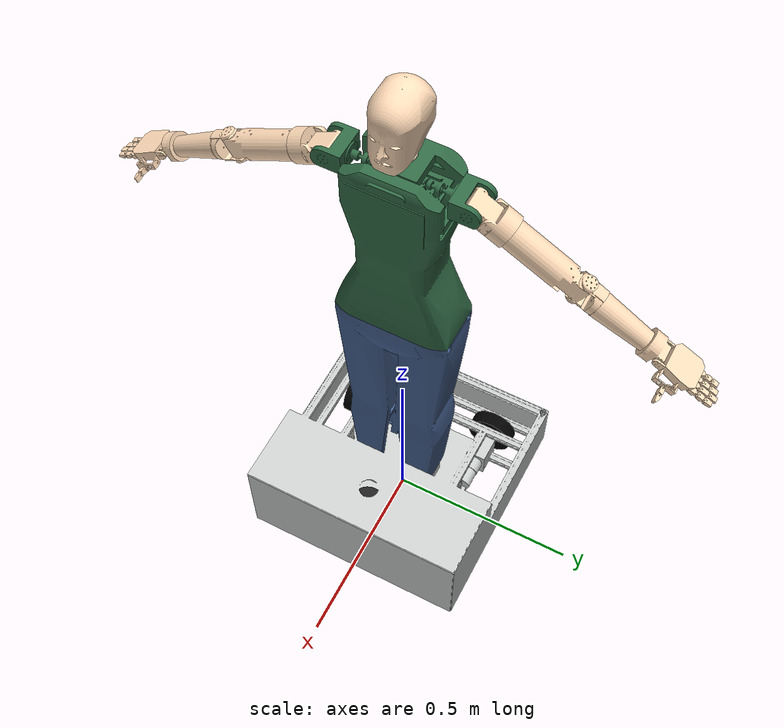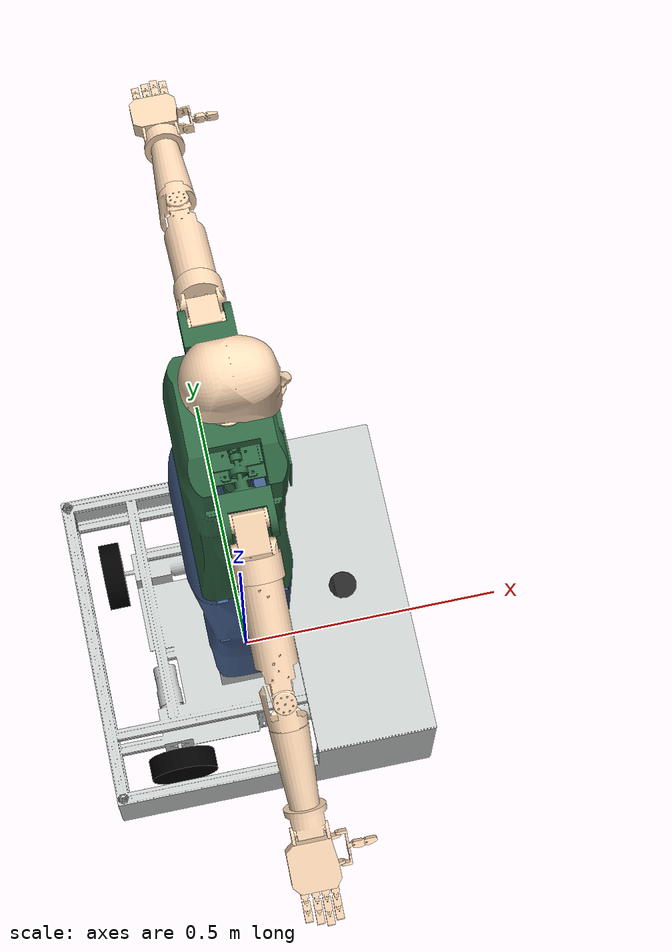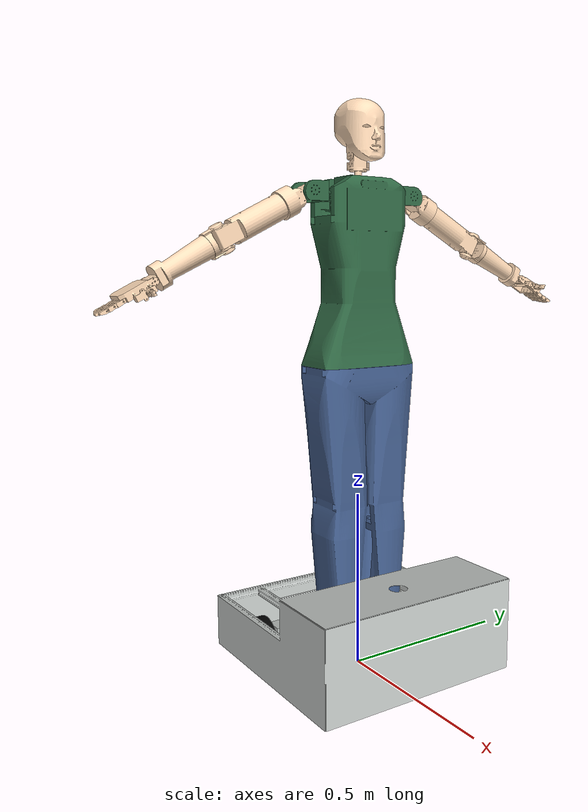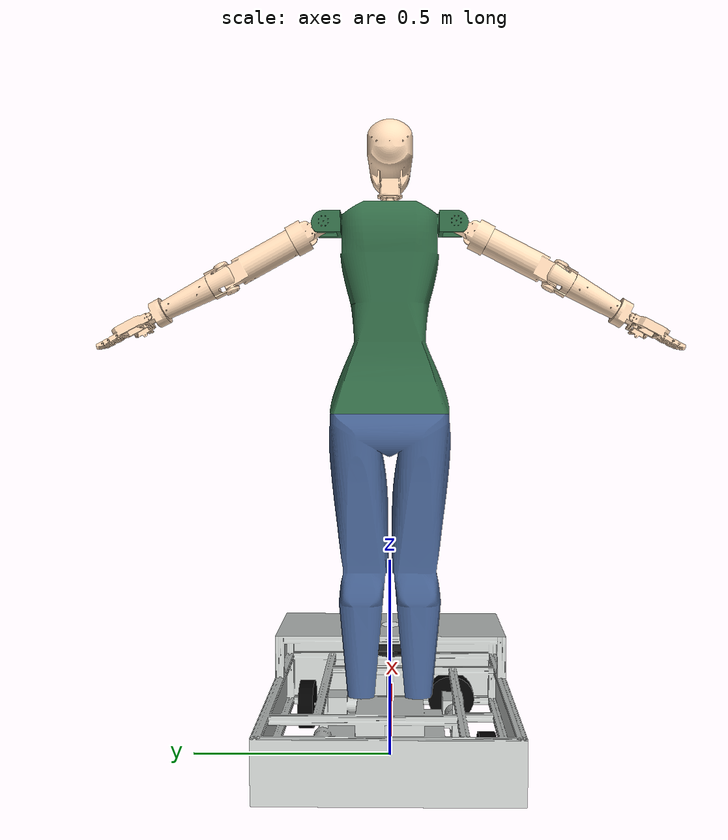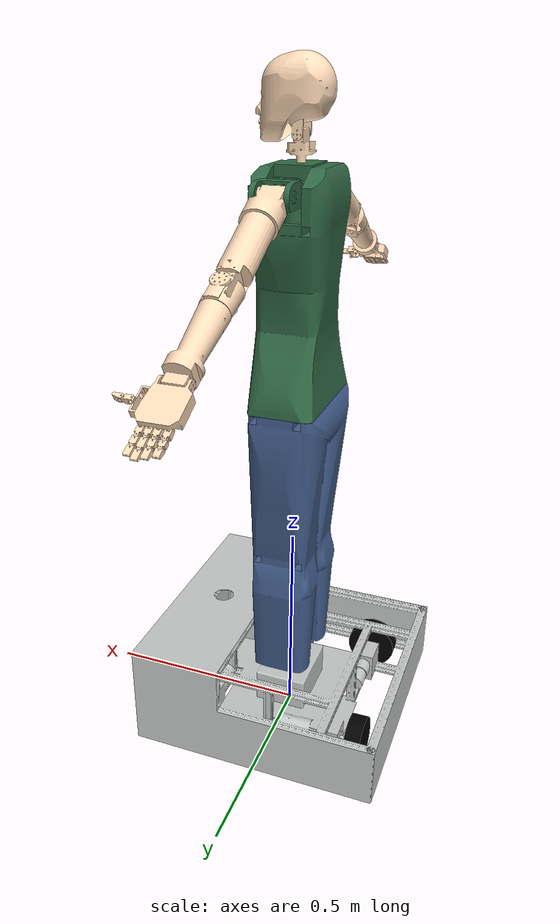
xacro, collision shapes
<?xml version="1.0"?>
<robot xmlns:xacro="http://www.ros.org/wiki/xacro"  name="robot">

    <xacro:arg name="use_eva" default="true"/>
    <xacro:arg name="use_drive" default="true"/>
    <xacro:arg name="use_omni_wheel" default="false"/>

    <xacro:include filename="robot_core.xacro"/>
    <xacro:include filename="gazebo_control.xacro"/>
    <xacro:include filename="ros2_control.xacro"/>

</robot>

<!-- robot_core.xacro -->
<robot xmlns:xacro="http://www.ros.org/wiki/xacro" >

    <xacro:include filename="inertial_macros.xacro"/>

    <!-- Base Link -->

    <link name="base_footprint"/>
    <link name="base_link"></link>
    <joint name="base_footprint_joint" type="fixed">
        <child link="base_link"/>
        <parent link="base_footprint"/>
        <origin xyz="0 0 0" rpy="0 0 0"/>
    </joint>

    <!-- USE DRIVE -->

    <xacro:if value="$(arg use_drive)">

        <link name="drive_base_link">
            <visual>
                <origin xyz="0.0 0.0 0.0" rpy="0.0 0.0 0.0"/>
                <geometry>
                    <mesh filename="file://$(find project_eva)/meshes/Drive/Base_Chassis.STL"/>
                </geometry>
                <material name="aluminium">
                    <color rgba="0.7725490196078432 0.788235294117647 0.7803921568627451 1.0" />
                </material>
            </visual>

            <collision>
                <origin xyz="0.0 0.0 0.0" rpy="0.0 0.0 0.0"/>
                <geometry>
                    <mesh filename="file://$(find project_eva)/meshes/Drive/Base_Chassis.STL"/>
                </geometry>
            </collision>

            <xacro:inertial_box mass="10.0" x="0.600" y="0.600" z="0.120" xyz="0 0 0" rpy="0 0 0">
            </xacro:inertial_box>
        </link>

        <gazebo reference = "drive_base_link">
            <material>Gazebo/Grey</material>
        </gazebo>

        <joint name="drive_base_joint" type="fixed">
            <parent link="base_link"/>
            <child link="drive_base_link"/>
            <origin xyz="0 0 0.02" rpy="0 0 0" />
        </joint>

        <xacro:include filename="lidar.xacro"/>

        <!-- Wheels-->

        <xacro:if value="$(arg use_omni_wheel)">
            <!-- Omni Wheels -->
            <xacro:include filename="omni_wheel.xacro"/>
            <xacro:omni_wheel parent="drive_base_link" child="front_left"  xyz=" 0.255  0.205 0.035" rpy=" 0.0   1.57 0.0 "/>
            <xacro:omni_wheel parent="drive_base_link" child="back_right"  xyz="-0.255 -0.205 0.035" rpy=" 0.0  -1.57 0.0"/>
            <xacro:omni_wheel parent="drive_base_link" child="back_left"   xyz="-0.205  0.255 0.035" rpy="-1.57  0    0.0"/>
            <xacro:omni_wheel parent="drive_base_link" child="front_right" xyz=" 0.205 -0.255 0.035" rpy=" 1.57  0    0.0"/>
        </xacro:if>

        <xacro:unless value="$(arg use_omni_wheel)">
            <!--Normal Wheels-->
            <xacro:include filename="wheel.xacro"/>
            <xacro:wheel parent="drive_base_link" child="front_left"  xyz=" 0.168  0.218   0.045" rpy=" 1.57  0.0  0.0 "/>
            <xacro:wheel parent="drive_base_link" child="back_right"  xyz="-0.168 -0.218   0.045" rpy="-1.57  0.0  0.0"/>
            <xacro:wheel parent="drive_base_link" child="back_left"   xyz=" 0.218  -0.168 0.045" rpy=" 0.0  -1.57 0.0"/>
            <xacro:wheel parent="drive_base_link" child="front_right" xyz="-0.218   0.168 0.045" rpy=" 0.0   1.57 0.0"/>
        </xacro:unless>

        <xacro:default_wheel_transmission name="front_left"/>
        <xacro:default_wheel_transmission name="back_right"/>
        <xacro:default_wheel_transmission name="back_left"/>
        <xacro:default_wheel_transmission name="front_right"/>

    </xacro:if>

    <!-- USE EVA -->

    <xacro:if value="$(arg use_eva)">

        <xacro:include filename="body.xacro"/>
        <xacro:include filename="realsense.xacro"/>
        <xacro:include filename="arm.xacro"/>

        <link name="EVA_base_link"></link>

        <joint name="base_joint" type="fixed">
            <parent link="base_link"/>
            <child link="EVA_base_link"/>
            <origin xyz="0 0 0.175" rpy="0 0 0" />
        </joint>

        <xacro:sholder parent="body" side="left"  v_rpy="0.0 0.0 0"    c_xyz="0.0  0.035 0.0" o_xyz="0    0.118 0.457" o_rpy="0.0  0.0  0.0"/>
        <xacro:sholder parent="body" side="right" v_rpy="0.0 0.0 3.14" c_xyz="0.0 -0.035 0.0" o_xyz="0.0 -0.118 0.457" o_rpy="3.14 3.14 3.14"/>

        <xacro:upper_biceps side="left"  lower="0.08"     upper="2.09" o_xyz="0  0.040 0"/>
        <xacro:upper_biceps side="right" lower="-2.09" upper="-0.08"    o_xyz="0 -0.040 0"/>

        <xacro:lower_biceps side="left"  lower="-1.57" upper="0"/>
        <xacro:lower_biceps side="right" lower="0"     upper="1.57"/>

        <xacro:elbow side="left"  lower="-2.05" upper="0"/>
        <xacro:elbow side="right" lower="-2.05" upper="0"/>

        <xacro:wrist side="left"  lower="-1.57" upper="1.57"/>
        <xacro:wrist side="right" lower="-1.57" upper="1.57"/>

        <xacro:hand side="left"  lower="-1.10" upper="1.5"  xyz="0.0475 0.012 0.01"/>
        <xacro:hand side="right" lower="-1.5"  upper="1.10" xyz="0.0475 0.0185 0.01"/>

        <xacro:finger_link side="right" finger="4" link="1" xyz=" 0.008  0.0065 0.003"  rpy="3.14 1.57 0" ixyz="0.002 0 -0.009" mesh="all_finger_1"/>
        <xacro:finger_link side="right" finger="3" link="1" xyz=" 0.008  0.0065 0.003"  rpy="3.14 1.57 0" ixyz="0.002 0 -0.009" mesh="all_finger_1"/>
        <xacro:finger_link side="right" finger="2" link="1" xyz=" 0.008  0.0065 0.003"  rpy="3.14 1.57 0" ixyz="0.002 0 -0.009" mesh="all_finger_1"/>
        <xacro:finger_link side="right" finger="1" link="1" xyz=" 0.008  0.0065 0.003"  rpy="3.14 1.57 0" ixyz="0.002 0 -0.009" mesh="all_finger_1"/>
        <xacro:finger_link side="left"  finger="4" link="1" xyz="-0.004 -0.0065 0.003"  rpy="0    1.57 0" ixyz="0.002 0 -0.009" mesh="all_finger_1"/>
        <xacro:finger_link side="left"  finger="3" link="1" xyz="-0.004 -0.0065 0.003"  rpy="0    1.57 0" ixyz="0.002 0 -0.009" mesh="all_finger_1"/>
        <xacro:finger_link side="left"  finger="2" link="1" xyz="-0.004 -0.0065 0.003"  rpy="0    1.57 0" ixyz="0.002 0 -0.009" mesh="all_finger_1"/>
        <xacro:finger_link side="left"  finger="1" link="1" xyz="-0.004 -0.0065 0.003"  rpy="0    1.57 0" ixyz="0.002 0 -0.009" mesh="all_finger_1"/>

        <xacro:finger_link side="right" finger="4" link="2" xyz=" 0.008  0.006 0.003"   rpy="3.14 1.57 0" ixyz="0.002 0 -0.009" mesh="index_finger_2"/>
        <xacro:finger_link side="right" finger="3" link="2" xyz=" 0.008  0.006 0.003"   rpy="3.14 1.57 0" ixyz="0.002 0 -0.009" mesh="middle_finger_2"/>
        <xacro:finger_link side="right" finger="2" link="2" xyz=" 0.008  0.006 0.003"   rpy="3.14 1.57 0" ixyz="0.002 0 -0.009" mesh="ring_finger_2"/>
        <xacro:finger_link side="right" finger="1" link="2" xyz=" 0.008  0.0055 0.003"  rpy="3.14 1.57 0" ixyz="0.002 0 -0.009" mesh="pinky_finger_2"/>
        <xacro:finger_link side="left"  finger="4" link="2" xyz="-0.004 -0.006 0.003"   rpy="0    1.57 0" ixyz="0.002 0 -0.009" mesh="index_finger_2"/>
        <xacro:finger_link side="left"  finger="3" link="2" xyz="-0.004 -0.006 0.003"   rpy="0    1.57 0" ixyz="0.002 0 -0.009" mesh="middle_finger_2"/>
        <xacro:finger_link side="left"  finger="2" link="2" xyz="-0.004 -0.006 0.003"   rpy="0    1.57 0" ixyz="0.002 0 -0.009" mesh="ring_finger_2"/>
        <xacro:finger_link side="left"  finger="1" link="2" xyz="-0.004 -0.0055 0.003"  rpy="0    1.57 0" ixyz="0.002 0 -0.009" mesh="pinky_finger_2"/>

        <xacro:finger_link side="right" finger="4" link="3" xyz=" 0.008  0.0052 0.0035" rpy="3.14 1.57 0" ixyz="0.002 0 -0.009" mesh="index_finger_3"/>
        <xacro:finger_link side="right" finger="3" link="3" xyz=" 0.008  0.0052 0.0035" rpy="3.14 1.57 0" ixyz="0.002 0 -0.009" mesh="middle_finger_3"/>
        <xacro:finger_link side="right" finger="2" link="3" xyz=" 0.008  0.0052 0.0035" rpy="3.14 1.57 0" ixyz="0.002 0 -0.009" mesh="ring_finger_3"/>
        <xacro:finger_link side="right" finger="1" link="3" xyz=" 0.008  0.0052 0.0035" rpy="3.14 1.57 0" ixyz="0.002 0 -0.009" mesh="pinky_finger_3"/>
        <xacro:finger_link side="left"  finger="4" link="3" xyz="-0.004 -0.0052 0.0035" rpy="0    1.57 0" ixyz="0.002 0 -0.009" mesh="index_finger_3"/>
        <xacro:finger_link side="left"  finger="3" link="3" xyz="-0.004 -0.0052 0.0035" rpy="0    1.57 0" ixyz="0.002 0 -0.009" mesh="middle_finger_3"/>
        <xacro:finger_link side="left"  finger="2" link="3" xyz="-0.004 -0.0052 0.0035" rpy="0    1.57 0" ixyz="0.002 0 -0.009" mesh="ring_finger_3"/>
        <xacro:finger_link side="left"  finger="1" link="3" xyz="-0.004 -0.0052 0.0035" rpy="0    1.57 0" ixyz="0.002 0 -0.009" mesh="pinky_finger_3"/>

        <xacro:finger_link side="right" finger="5" link="1" xyz=" 0.023  0.015  0.008"  rpy="3.14 1.57 0" ixyz="0.000 0 -0.015" mesh="thumb_finger_1" />
        <xacro:finger_link side="right" finger="5" link="2" xyz="-0.003  0.006 -0.006"  rpy="1.57 0    0" ixyz="0.009 0  0.000" mesh="thumb_finger_2" />
        <xacro:finger_link side="right" finger="5" link="3" xyz="-0.0035 0.006 -0.005"  rpy="1.57 0    0" ixyz="0.009 0  0.000" mesh="thumb_finger_3" />
        <xacro:finger_link side="left"  finger="5" link="1" xyz=" 0.023  0.015  0.008"  rpy="3.14 1.57 0" ixyz="0.000 0 -0.015" mesh="thumb_finger_1" />
        <xacro:finger_link side="left"  finger="5" link="2" xyz="-0.003  0.006 -0.006"  rpy="1.57 0    0" ixyz="0.009 0  0.000" mesh="thumb_finger_2" />
        <xacro:finger_link side="left"  finger="5" link="3" xyz="-0.0035 0.006 -0.005"  rpy="1.57 0    0" ixyz="0.009 0  0.000" mesh="thumb_finger_3" />

        <xacro:finger_joints_1 name="right_finger_4_link_1" parent="right_hand"            child="right_finger_4_link_1"  xyz=" 0.02126 0.005 -0.088" lower="0"     upper="1.57" />
        <xacro:finger_joints   name="right_finger_4_link_2" parent="right_finger_4_link_1" child="right_finger_4_link_2"  xyz=" 0       0     -0.024" lower="0"     upper="1.57"  mimic="right_finger_4_link_1_joint"/>
        <xacro:finger_joints   name="right_finger_4_link_3" parent="right_finger_4_link_2" child="right_finger_4_link_3"  xyz=" 0       0     -0.019" lower="0"     upper="1.57"  mimic="right_finger_4_link_1_joint"/>
        <xacro:finger_joints_1 name="right_finger_3_link_1" parent="right_hand"            child="right_finger_3_link_1"  xyz=" 0.00625 0.005 -0.088" lower="0"     upper="1.57" />
        <xacro:finger_joints   name="right_finger_3_link_2" parent="right_finger_3_link_1" child="right_finger_3_link_2"  xyz=" 0       0     -0.024" lower="0"     upper="1.57"  mimic="right_finger_3_link_1_joint"/>
        <xacro:finger_joints   name="right_finger_3_link_3" parent="right_finger_3_link_2" child="right_finger_3_link_3"  xyz=" 0       0     -0.024" lower="0"     upper="1.57"  mimic="right_finger_3_link_1_joint"/>
        <xacro:finger_joints_1 name="right_finger_2_link_1" parent="right_hand"            child="right_finger_2_link_1"  xyz="-0.00875 0.005 -0.088" lower="0"     upper="1.57" />
        <xacro:finger_joints   name="right_finger_2_link_2" parent="right_finger_2_link_1" child="right_finger_2_link_2"  xyz=" 0       0     -0.024" lower="0"     upper="1.57"  mimic="right_finger_2_link_1_joint"/>
        <xacro:finger_joints   name="right_finger_2_link_3" parent="right_finger_2_link_2" child="right_finger_2_link_3"  xyz=" 0       0     -0.019" lower="0"     upper="1.57"  mimic="right_finger_2_link_1_joint"/>
        <xacro:finger_joints_1 name="right_finger_1_link_1" parent="right_hand"            child="right_finger_1_link_1"  xyz="-0.02575 0.005 -0.088" lower="0"     upper="1.57" />
        <xacro:finger_joints   name="right_finger_1_link_2" parent="right_finger_1_link_1" child="right_finger_1_link_2"  xyz=" 0       0     -0.024" lower="0"     upper="1.57"  mimic="right_finger_1_link_1_joint"/>
        <xacro:finger_joints   name="right_finger_1_link_3" parent="right_finger_1_link_2" child="right_finger_1_link_3"  xyz=" 0       0     -0.016" lower="0"     upper="1.57"  mimic="right_finger_1_link_1_joint"/>

        <xacro:finger_joints_1 name="left_finger_4_link_1"  parent="left_hand"             child="left_finger_4_link_1"  xyz=" 0.02126 -0.005 -0.088" lower="-1.57" upper="0" />
        <xacro:finger_joints   name="left_finger_4_link_2"  parent="left_finger_4_link_1"  child="left_finger_4_link_2"  xyz=" 0        0     -0.024" lower="-1.57" upper="0"     mimic="left_finger_4_link_1_joint"/>
        <xacro:finger_joints   name="left_finger_4_link_3"  parent="left_finger_4_link_2"  child="left_finger_4_link_3"  xyz=" 0        0     -0.019" lower="-1.57" upper="0"     mimic="left_finger_4_link_1_joint"/>
        <xacro:finger_joints_1 name="left_finger_3_link_1"  parent="left_hand"             child="left_finger_3_link_1"  xyz=" 0.00625 -0.005 -0.088" lower="-1.57" upper="0" />
        <xacro:finger_joints   name="left_finger_3_link_2"  parent="left_finger_3_link_1"  child="left_finger_3_link_2"  xyz=" 0        0     -0.024" lower="-1.57" upper="0"     mimic="left_finger_3_link_1_joint"/>
        <xacro:finger_joints   name="left_finger_3_link_3"  parent="left_finger_3_link_2"  child="left_finger_3_link_3"  xyz=" 0        0     -0.024" lower="-1.57" upper="0"     mimic="left_finger_3_link_1_joint"/>
        <xacro:finger_joints_1 name="left_finger_2_link_1"  parent="left_hand"             child="left_finger_2_link_1"  xyz="-0.00875 -0.005 -0.088" lower="-1.57" upper="0" />
        <xacro:finger_joints   name="left_finger_2_link_2"  parent="left_finger_2_link_1"  child="left_finger_2_link_2"  xyz=" 0        0     -0.024" lower="-1.57" upper="0"     mimic="left_finger_2_link_1_joint"/>
        <xacro:finger_joints   name="left_finger_2_link_3"  parent="left_finger_2_link_2"  child="left_finger_2_link_3"  xyz=" 0        0     -0.019" lower="-1.57" upper="0"     mimic="left_finger_2_link_1_joint"/>
        <xacro:finger_joints_1 name="left_finger_1_link_1"  parent="left_hand"             child="left_finger_1_link_1"  xyz="-0.02575 -0.005 -0.088" lower="-1.57" upper="0" />
        <xacro:finger_joints   name="left_finger_1_link_2"  parent="left_finger_1_link_1"  child="left_finger_1_link_2"  xyz=" 0        0     -0.024" lower="-1.57" upper="0"     mimic="left_finger_1_link_1_joint"/>
        <xacro:finger_joints   name="left_finger_1_link_3"  parent="left_finger_1_link_2"  child="left_finger_1_link_3"  xyz=" 0        0     -0.016" lower="-1.57" upper="0"     mimic="left_finger_1_link_1_joint"/>

        <xacro:default_transmission name="left_arm"/>
        <xacro:default_transmission name="left_sholder"/>
        <xacro:default_transmission name="left_biceps"/>
        <xacro:default_transmission name="left_elbow"/>
        <xacro:default_transmission name="left_wrist"/>
        <xacro:default_transmission name="left_hand"/>

        <xacro:default_transmission name="right_arm"/>
        <xacro:default_transmission name="right_sholder"/>
        <xacro:default_transmission name="right_biceps"/>
        <xacro:default_transmission name="right_elbow"/>
        <xacro:default_transmission name="right_wrist"/>
        <xacro:default_transmission name="right_hand"/>

        <xacro:default_transmission name="right_finger_4_link_1"/>
        <xacro:default_transmission name="right_finger_3_link_1"/>
        <xacro:default_transmission name="right_finger_2_link_1"/>
        <xacro:default_transmission name="right_finger_1_link_1"/>

        <xacro:default_transmission name="left_finger_4_link_1"/>
        <xacro:default_transmission name="left_finger_3_link_1"/>
        <xacro:default_transmission name="left_finger_2_link_1"/>
        <xacro:default_transmission name="left_finger_1_link_1"/>

        <xacro:default_transmission name="right_finger_5_link_1"/>
        <xacro:default_transmission name="right_finger_5_link_2"/>
        <xacro:default_transmission name="left_finger_5_link_1"/>
        <xacro:default_transmission name="left_finger_5_link_2"/>

    </xacro:if>

</robot>

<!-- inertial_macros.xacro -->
<robot xmlns:xacro="http://www.ros.org/wiki/xacro" >

    <!-- Specify some standard inertial calculations https://en.wikipedia.org/wiki/List_of_moments_of_inertia -->
    <!-- These make use of xacro's mathematical functionality -->

    <xacro:macro name="inertial_sphere" params="mass radius rpy xyz">
        <inertial>
            <origin xyz="${xyz}" rpy="${rpy}"/>
            <mass value="${mass}" />
            <inertia ixx="${(2/5) * mass * (radius*radius)}" ixy="0.0" ixz="0.0"
                    iyy="${(2/5) * mass * (radius*radius)}" iyz="0.0"
                    izz="${(2/5) * mass * (radius*radius)}" />
        </inertial>
    </xacro:macro>

    <xacro:macro name="inertial_box" params="mass x y z rpy xyz">
        <inertial>
            <origin xyz="${xyz}" rpy="${rpy}"/>
            <mass value="${mass}" />
            <inertia ixx="${(1/12) * mass * (y*y+z*z)}" ixy="0.0" ixz="0.0"
                    iyy="${(1/12) * mass * (x*x+z*z)}" iyz="0.0"
                    izz="${(1/12) * mass * (x*x+y*y)}" />
        </inertial>
    </xacro:macro>

    <xacro:macro name="inertial_cylinder" params="mass length radius xyz rpy">
        <inertial>
            <origin xyz="${xyz}" rpy="${rpy}"/>
            <mass value="${mass}" />
            <inertia ixx="${(1/12) * mass * (3*radius*radius + length*length)}" ixy="0.0" ixz="0.0"
                    iyy="${(1/12) * mass * (3*radius*radius + length*length)}" iyz="0.0"
                    izz="${(1/2) * mass * (radius*radius)}" />
        </inertial>
    </xacro:macro>

</robot>

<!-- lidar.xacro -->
<robot xmlns:xacro="http://www.ros.org/wiki/xacro">

    <xacro:property name="lidar_mass"       value="0.010"/>
    <xacro:property name="lidar_radius"     value="0.0425"/>
    <xacro:property name="lidar_height"     value="0.024"/>

    <joint name="laser_joint" type="fixed">
        <parent link="drive_base_link"/>
        <child link="laser_frame"/>
        <origin xyz="0.2 0.0 0.193" rpy="0.0 0.0 0.0"/>
    </joint>

    <link name="laser_frame">

        <visual>
            <origin xyz="-0.02 0.055 0.0" rpy="1.57 0 -1.57 "/>
            <geometry>
                <mesh filename="file://$(find project_eva)/meshes/Sensors/Rplidar_S1.STL" scale="0.001 0.001 0.001"/>
            </geometry>
            <material name="">
                <color rgba="0.0 0.0 0.0 0.8"/>
            </material>
        </visual>
        <collision>
            <geometry>
                <cylinder radius="${lidar_radius}" length="${lidar_height}" />
            </geometry>
        </collision>

        <xacro:inertial_cylinder mass="${lidar_mass}" length="${lidar_height}" radius="${lidar_radius}" xyz="0 0 0" rpy="0 0 0">
        </xacro:inertial_cylinder>

    </link>

    <gazebo reference="laser_frame">
        <material>Gazebo/Black</material>
        <sensor name="laser" type="ray">
            <pose> 0 0 0 0 0 0 </pose>
            <visualize>false</visualize>
            <update_rate>10</update_rate>
            <ray>
                <scan>
                    <horizontal>
                        <samples>2475</samples>
                        <min_angle>-3.14</min_angle>
                        <max_angle>3.14</max_angle>
                    </horizontal>
                </scan>
                <range>
                    <min>0.3</min>
                    <max>8</max>
                </range>
            </ray>
            <plugin name="laser_controller" filename="libgazebo_ros_ray_sensor.so">
                <ros>
                    <argument>~/out:=scan</argument>
                </ros>
                <output_type>sensor_msgs/LaserScan</output_type>
                <frame_name>laser_frame</frame_name>
            </plugin>
            </sensor>
    </gazebo>
</robot>

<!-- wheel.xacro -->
<robot xmlns:xacro="http://www.ros.org/wiki/xacro">

    <xacro:include filename="inertial_macros.xacro"/>

    <xacro:property name="wheel_mass" value="0.650"/>
    <xacro:property name="wheel_radius" value="0.0635"/>
    <xacro:property name="wheel_thickness" value="0.039"/>

    <xacro:macro name="wheel" params="parent child xyz rpy">

        <link name="${child}_wheel_link">

            <visual>
                <origin xyz="0.0 0.0 -0.035" rpy="3.14 0.0 0.0"/>
                <geometry>
                    <mesh filename="file://$(find project_eva)/meshes/Drive/Omni_Wheel.STL"/>
                </geometry>
                <material name="Black">
                    <color rgba="0.0 0.0 0.0 1.0"/>
                </material>
            </visual>

            <collision>
                <origin xyz="0.0 0.0 -0.01" rpy="3.14 0.0 0.0"/>
                <geometry>
                    <cylinder radius="${wheel_radius}" length="${wheel_thickness}"/>
                </geometry>
            </collision>

            <xacro:inertial_cylinder mass="${wheel_mass}" length="${wheel_thickness}" radius="${wheel_radius}" xyz="0 0 0" rpy="0 0 0">
            </xacro:inertial_cylinder>
        </link>

        <gazebo reference="${child}_wheel_link">
            <kp>10000.0</kp>
            <kd>100</kd>
            <mu1>3</mu1>
            <mu2>0.6</mu2>
            <fdir1>0 1 0</fdir1>
            <fdir2>0 1 0</fdir2>
            <maxVel>10.0</maxVel>
            <minDepth>0</minDepth>
            <material>Gazebo/FlatBlack</material>
        </gazebo>

        <joint name="${child}_wheel_joint" type="continuous">
            <parent link="${parent}"/>
            <child link="${child}_wheel_link"/>
            <origin xyz="${xyz}" rpy="${rpy}" />
            <axis xyz="0.0 0.0 1.0" />
        </joint>

    </xacro:macro>

    <xacro:macro name="default_wheel_transmission" params="name">
        <transmission name="${name}_transmission">
            <plugin>transmission_interface/SimpleTransmission</plugin>
            <actuator name="${name}_motor" role="actuator1"/>
            <joint name="${name}_wheel_joint"  role="joint1">
                <mechanical_reduction>1.0</mechanical_reduction>
            </joint>
        </transmission>
    </xacro:macro>

</robot>

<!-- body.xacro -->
<robot xmlns:xacro="http://www.ros.org/wiki/xacro">

    <xacro:include filename="inertial_macros.xacro"/>

    <link name="leg">
        <visual>
            <origin xyz="0.0 0.0 0.0" rpy="1.57 0.0 1.57"/>
            <geometry>
                <mesh filename="file://$(find project_eva)/meshes/EVA/leg.STL"/>
            </geometry>
            <material name="jeans">
                <color rgba="${66/255} ${93/255} ${140/255} 1.0"/>
            </material>
        </visual>

        <collision>
            <origin xyz="0.0 0.0 0.0" rpy="1.57 0.0 1.57"/>
            <geometry>
                <mesh filename="file://$(find project_eva)/meshes/EVA/leg.STL"/>
            </geometry>
            <material name="black">
            </material>
        </collision>

        <xacro:inertial_box mass="0.5" x="0.020" y="0.030" z="0.050" xyz="0 0 0.0515" rpy="0 0 0" />
    </link>

    <joint name="leg_joint" type="fixed">
        <parent link="EVA_base_link"/>
        <child link="leg"/>
        <origin xyz="0 0 0.59" rpy="0 0 0" />
    </joint>

    <link name="body">
        <visual>
            <origin xyz="0.0 0.0 0.0" rpy="1.57 0.0 1.57"/>
            <geometry>
                <mesh filename="file://$(find project_eva)/meshes/EVA/body.STL"/>
            </geometry>
            <material name="Top">
                <color rgba="${48/255} ${104/255} ${68/255} 1.0"/>
            </material>
        </visual>

        <collision>
            <origin xyz="0.0 0.0 0.0" rpy="1.57 0.0 1.57"/>
            <geometry>
                <mesh filename="file://$(find project_eva)/meshes/EVA/body.STL"/>
            </geometry>
        </collision>

        <xacro:inertial_box mass="0.50" x="0.05" y="0.086" z="0.05" xyz="0 0 0.25" rpy="0 0 0"/>
    </link>

    <joint name="body_joint" type="fixed">
        <parent link="leg"/>
        <child link="body"/>
        <origin xyz="0 0 0.103" rpy="0 0 0" />
    </joint>

    <link name="neck">
        <visual>
            <origin xyz="0.0 0.0 0.0" rpy="1.57 0 1.57"/>
            <geometry>
                <mesh filename="file://$(find project_eva)/meshes/EVA/neck.STL"/>
            </geometry>
            <material name="skin">
                <color rgba="${255/255} ${219/255} ${184/255} 1.0"/>
            </material>
        </visual>

        <collision>
            <origin xyz="0.0 0.0 0.0" rpy="1.57 0 1.57"/>
            <geometry>
                <mesh filename="file://$(find project_eva)/meshes/EVA/neck.STL"/>
            </geometry>
        </collision>

        <xacro:inertial_cylinder mass="0.2" length="0.054" radius="0.03" xyz="0 0 0.027" rpy="0 0 0" />
    </link>

    <joint name="neck_joint" type="revolute">
        <axis xyz="0 0 1"/>
        <limit effort="0.1" lower="-1" upper="1" velocity="0.2"/>
        <parent link="body"/>
        <child link="neck"/>
        <origin xyz="0 0 0.5" rpy="0 0 0" />
    </joint>

    <link name="chin">
        <visual>
            <origin xyz="0.0 0.0 0.0" rpy="1.57 0 1.57"/>
            <geometry>
                <mesh filename="file://$(find project_eva)/meshes/EVA/chin.STL"/>
            </geometry>
            <material name="skin">
                <color rgba="${255/255} ${219/255} ${184/255} 1.0"/>
            </material>
        </visual>

        <collision>
            <origin xyz="0.0 0.0 0.0" rpy="1.57 0 1.57"/>
            <geometry>
                <mesh filename="file://$(find project_eva)/meshes/EVA/chin.STL"/>
            </geometry>
        </collision>

        <xacro:inertial_cylinder mass="1.0" length="0.05" radius="0.05" xyz="0 0 0.05" rpy="0 0 0" />

    </link>

    <joint name="head_joint" type="revolute">
        <axis xyz="0 1 0"/>
        <limit effort="0.1" lower="-.51" upper="0.38" velocity="0.2"/>
        <parent link="neck"/>
        <child link="chin"/>
        <origin xyz="0 0 0.054" rpy="0 0 0" />
    </joint>

</robot>

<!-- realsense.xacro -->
<robot xmlns:xacro="http://ros.org/wiki/xacro">

    <link name="realsense"/>

    <link name="realsense_gazebo"/>

    <joint name="realsense_gazebo_joint" type="fixed">
        <parent link="realsense"/>
        <child link="realsense_gazebo"/>
        <origin xyz="0.0 0 0" rpy="-1.5707963267948966 0 -1.5707963267948966"/>
    </joint>

    <gazebo reference="realsense">
        <turnGravityOff>true</turnGravityOff>
        <sensor type="depth" name="realsense_depth">
            <update_rate>30</update_rate>
            <camera>
                <!-- 75x65 degree FOV for the depth sensor -->
                <horizontal_fov>1.5184351666666667</horizontal_fov>
                <vertical_fov>1.0122901111111111</vertical_fov>
                <image>
                    <width>640</width>
                    <height>480</height>
                    <format>RGB8</format>
                </image>
                <clip>
                <!-- give the color sensor a maximum range of 50m so that the simulation renders nicely -->
                <near>0.01</near>
                <far>50.0</far>
                </clip>
            </camera>
            <plugin name="kinect_controller" filename="libgazebo_ros_openni_kinect.so">
                <baseline>0.2</baseline>
                <alwaysOn>true</alwaysOn>
                <updateRate>30</updateRate>
                <cameraName>realsense</cameraName>
                <imageTopicName>color/image_raw</imageTopicName>
                <cameraInfoTopicName>color/camera_info</cameraInfoTopicName>
                <depthImageTopicName>depth/image_rect_raw</depthImageTopicName>
                <depthImageInfoTopicName>depth/camera_info</depthImageInfoTopicName>
                <pointCloudTopicName>depth/color/points</pointCloudTopicName>
                <frameName>realsense_gazebo</frameName>
                <pointCloudCutoff>0.105</pointCloudCutoff>
                <pointCloudCutoffMax>8.0</pointCloudCutoffMax>
                <distortionK1>0.00000001</distortionK1>
                <distortionK2>0.00000001</distortionK2>
                <distortionK3>0.00000001</distortionK3>
                <distortionT1>0.00000001</distortionT1>
                <distortionT2>0.00000001</distortionT2>
                <CxPrime>0</CxPrime>
                <Cx>0</Cx>
                <Cy>0</Cy>
                <focalLength>0</focalLength>
                <hackBaseline>0</hackBaseline>
            </plugin>
        </sensor>
    </gazebo>

    <link name="realsense_lens">
        <visual>
            <origin xyz="0.021 0 0" rpy="${pi/2} 0 ${pi/2}" />
            <geometry>
                <mesh filename="file://$(find project_eva)/meshes/Sensors/d435.dae"/>
            </geometry>
            <material name="black">
                <color rgba="0.0 0.0 0.0 1.0"/>
            </material>
        </visual>
    </link>

    <joint type="fixed" name="realsense_lens_joint">
        <!-- Offset the camera 2cm backwards and 1cm up -->
        <origin xyz="0.057 0 0.579" rpy="0 0 0" />
        <parent link="leg" />
        <child link="realsense_lens" />
    </joint>

    <joint type="fixed" name="realsense_joint">
        <origin xyz="0.025 0 0" rpy="0 0 0" />
        <parent link="realsense_lens" />
        <child link="realsense" />
    </joint>

</robot>

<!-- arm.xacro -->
<robot xmlns:xacro="http://www.ros.org/wiki/xacro">
    <xacro:include filename="inertial_macros.xacro"/>

    <xacro:macro name="sholder" params="parent side v_rpy c_xyz o_xyz o_rpy">
        <link name="${side}_sholder">
            <visual>
                <origin xyz="0.0 0.0 0.0" rpy="${v_rpy}"/>
                <geometry>
                    <mesh filename="file://$(find project_eva)/meshes/EVA/Arm/sholder.STL"/>
                </geometry>
                <material name="Top">
                    <color rgba="${48/255} ${104/255} ${68/255} 1.0"/>
                </material>
            </visual>

            <collision>
                <origin xyz="0.0 0.0 0.0" rpy="${v_rpy}"/>
                <geometry>
                    <mesh filename="file://$(find project_eva)/meshes/EVA/Arm/sholder.STL"/>
                </geometry>
            </collision>

            <xacro:inertial_box mass="0.3" x="0.070" y="0.080" z="0.050" xyz="${c_xyz}" rpy="0.0 0.0 0.0">
            </xacro:inertial_box>
        </link>

        <joint name="${side}_arm_joint" type="revolute">
            <axis xyz="0 1 0"/>
            <limit effort="0.1" lower="-2.0" upper="0.51" velocity="0.2"/>
            <origin xyz="${o_xyz}" rpy="${o_rpy}"/>
            <parent link="${parent}" />
            <child link="${side}_sholder" />
        </joint>
    </xacro:macro>

    <xacro:macro name="upper_biceps" params="side lower upper o_xyz">
        <link name="${side}_upper_biceps">
            <visual>
                <origin xyz="0.0 0.0 0.0" rpy="0.0 0.0 0.0"/>
                <geometry>
                    <mesh filename="file://$(find project_eva)/meshes/EVA/Arm/upper_biceps.STL"/>
                </geometry>
                <material name="skin">
                    <color rgba="${255/255} ${219/255} ${184/255} 1.0"/>
                </material>
            </visual>

            <collision>
                <origin xyz="0.0 0.0 0.0" rpy="0.0 0.0 0.0"/>
                <geometry>
                    <mesh filename="file://$(find project_eva)/meshes/EVA/Arm/upper_biceps.STL"/>
                </geometry>
            </collision>

            <xacro:inertial_cylinder mass="0.03" radius="0.038"  length="0.090" xyz="0.0 0.0 -0.0450" rpy="0.0 0.0 0.0">
            </xacro:inertial_cylinder>

        </link>

        <joint name="${side}_sholder_joint" type="revolute">
            <axis xyz="1 0 0"/>
            <limit effort="0.1" lower="${lower}" upper="${upper}" velocity="0.2"/>
            <origin xyz="${o_xyz}" rpy="0 0 0" />
            <parent link="${side}_sholder" />
            <child link="${side}_upper_biceps" />
        </joint>
    </xacro:macro>

    <xacro:macro name="lower_biceps" params="side lower upper">
        <link name="${side}_lower_biceps">
            <visual>
                <origin xyz="0.0 0.0 0.0" rpy="-0.07 0 0"/>
                <geometry>
                    <mesh filename="file://$(find project_eva)/meshes/EVA/Arm/lower_biceps.STL"/>
                </geometry>
                <material name="skin">
                    <color rgba="${255/255} ${219/255} ${184/255} 1.0"/>
                </material>
            </visual>

            <collision>
                <origin xyz="0.0 0.0 0.0" rpy="-0.07 0 0"/>
                <geometry>
                    <mesh filename="file://$(find project_eva)/meshes/EVA/Arm/lower_biceps.STL"/>
                </geometry>
            </collision>

            <xacro:inertial_cylinder mass="0.1" radius="0.038" length="0.1830" xyz="0.0 0.0 -0.0915" rpy="0.0 0.0 0.0">
            </xacro:inertial_cylinder>
        </link>

        <joint name="${side}_biceps_joint" type="revolute">
            <axis xyz="0 0 1"/>
            <limit effort="0.1" lower="${lower}" upper="${upper}" velocity="0.2"/>
            <origin xyz="0 0 -0.090" rpy="0 0 0" />
            <parent link="${side}_upper_biceps" />
            <child link="${side}_lower_biceps" />
        </joint>
    </xacro:macro>

    <xacro:macro name="elbow" params="side lower upper">
        <link name="${side}_elbow">
            <visual>
                <origin xyz="0.0 -0.0015 0.0" rpy="0 0 0"/>
                <geometry>
                    <mesh filename="file://$(find project_eva)/meshes/EVA/Arm/elbow.STL"/>
                </geometry>
                <material name="skin">
                    <color rgba="${255/255} ${219/255} ${184/255} 1.0"/>
                </material>
            </visual>

            <collision>
                <origin xyz="0.0 -0.0015 0.0" rpy="0 0 0"/>
                <geometry>
                    <mesh filename="file://$(find project_eva)/meshes/EVA/Arm/elbow.STL"/>
                </geometry>
            </collision>

            <xacro:inertial_cylinder mass="0.1" radius="0.038" length="0.0435" xyz="0.0 0.0 0.02175" rpy="0.0 0.0 0.0">
            </xacro:inertial_cylinder>
        </link>

        <joint name="${side}_elbow_joint" type="revolute">
            <axis xyz="0 1 0"/>
            <limit effort="0.1" lower="${lower}" upper="${upper}" velocity="0.2"/>
            <origin xyz="0 0 -0.1830" rpy="0 0 0" />
            <parent link="${side}_lower_biceps" />
            <child link="${side}_elbow" />
        </joint>
    </xacro:macro>

    <xacro:macro name="wrist" params="side lower upper">
        <link name="${side}_wrist">
            <visual>
                <origin xyz="0.0 -0.003 0.0440" rpy="0.0 0.0 0.0"/>
                <geometry>
                    <mesh filename="file://$(find project_eva)/meshes/EVA/Arm/wrist.STL"/>
                </geometry>
                <material name="skin">
                    <color rgba="${255/255} ${219/255} ${184/255} 1.0"/>
                </material>
            </visual>

            <collision>
                <origin xyz="0.0 -0.003 0.0440" rpy="0.0 0.0 0.0"/>
                <geometry>
                    <mesh filename="file://$(find project_eva)/meshes/EVA/Arm/wrist.STL"/>
                </geometry>
            </collision>

            <xacro:inertial_cylinder mass="0.1" radius="0.030" length="0.1554" xyz="0 0 0" rpy="0 0 0">
            </xacro:inertial_cylinder>

        </link>

        <joint name="${side}_wrist_joint" type="revolute">
            <axis xyz="0 0 1"/>
            <limit effort="0.1" lower="${lower}" upper="${upper}" velocity="0.2"/>
            <origin xyz="0 0 -0.0435" rpy="0 0 0" />
            <parent link="${side}_elbow" />
            <child link="${side}_wrist" />
        </joint>
    </xacro:macro>

    <xacro:macro name="hand" params="side lower upper xyz">
        <link name="${side}_hand">
            <visual>
                <origin xyz="${xyz}" rpy="1.57 3.14 0"/>
                <geometry>
                    <mesh filename="file://$(find project_eva)/meshes/EVA/Arm/Hand/${side}_palm.STL" scale="0.001 0.001 0.001"/>
                </geometry>
                <material name="skin">
                    <color rgba="${255/255} ${219/255} ${184/255} 1.0"/>
                </material>
            </visual>

            <collision>
                <origin xyz="${xyz}" rpy="1.57 3.14 0"/>
                <geometry>
                    <mesh filename="file://$(find project_eva)/meshes/EVA/Arm/Hand/${side}_palm.STL" scale="0.001 0.001 0.001"/>
                </geometry>
            </collision>

            <xacro:inertial_box mass="0.1" x="0.070" y="0.080" z="0.050"  xyz="0 0 0" rpy="0 0 0">
            </xacro:inertial_box>

        </link>

        <joint name="${side}_hand_joint" type="revolute">
            <axis xyz="1 0 0"/>
            <limit effort="0.1" lower="${lower}" upper="${upper}" velocity="0.2"/>
            <origin xyz="0 0.002 -0.167" rpy="0 0 0" />
            <parent link="${side}_wrist" />
            <child link="${side}_hand" />
        </joint>
    </xacro:macro>

<!--/////////////////////////////////////////// FINGERS  /////////////////////////////////////////////////////////////////-->

    <xacro:macro name="finger_joints" params="name parent child mimic xyz lower upper">
         <joint name="${name}_joint" type="revolute">
            <axis xyz="1 0 0"/>
            <limit effort="0.1" lower="${lower}" upper="${upper}" velocity="0.2"/>
            <origin xyz="${xyz}" rpy="0 0 0" />
            <parent link="${parent}" />
            <child link="${child}" />
            <mimic joint="${mimic}" multiplier="1"/>
        </joint>
    </xacro:macro>

     <xacro:macro name="finger_joints_1" params="name parent child xyz lower upper">
         <joint name="${name}_joint" type="revolute">
            <axis xyz="1 0 0"/>
            <limit effort="0.1" lower="${lower}" upper="${upper}" velocity="0.2"/>
            <origin xyz="${xyz}" rpy="0 0 0" />
            <parent link="${parent}" />
            <child link="${child}" />
        </joint>
    </xacro:macro>

    <xacro:macro name="finger_link" params="side finger link xyz rpy ixyz mesh">
        <link name="${side}_finger_${finger}_link_${link}">
            <visual>
                <origin xyz="${xyz}" rpy="${rpy}"/>
                <geometry>
                    <mesh filename="file://$(find project_eva)/meshes/EVA/Arm/Hand/${mesh}.STL" scale="0.001 0.001 0.001"/>
                </geometry>
                <material name="skin">
                    <color rgba="${255/255} ${219/255} ${184/255} 1.0"/>
                </material>
            </visual>
            <collision>
                <origin xyz="${xyz}" rpy="${rpy}"/>
                <geometry>
                    <mesh filename="file://$(find project_eva)/meshes/EVA/Arm/Hand/${mesh}.STL" scale="0.001 0.001 0.001"/>
                </geometry>
                <material name="skin">
                    <color rgba="${255/255} ${219/255} ${184/255} 1.0"/>
                </material>
            </collision>
            <xacro:inertial_cylinder mass="0.02" length="0.02" radius="0.02" xyz="${ixyz}" rpy="0 0 0">
            </xacro:inertial_cylinder>
        </link>

    </xacro:macro>

    <joint name="right_finger_5_link_1_joint" type="revolute">
        <axis xyz="0 0 1"/>
        <limit effort="0.1"  lower="0" upper="1.57" velocity="0.2"/>
        <origin xyz="0.044 0.0095 -0.02" rpy="0 0 0" />
        <parent link="right_hand"/>
        <child link="right_finger_5_link_1" />
    </joint>

    <joint name="right_finger_5_link_2_joint" type="revolute">
        <axis xyz="0 1 0"/>
        <limit effort="0.1"  lower="0" upper="1.22" velocity="0.2"/>
        <origin xyz="0.02 0.0005 -0.0175" rpy="0 0 0" />
        <parent link="right_finger_5_link_1" />
        <child link="right_finger_5_link_2" />
    </joint>

    <joint name="right_finger_5_link_3_joint" type="revolute">
        <axis xyz="0 1 0"/>
        <limit effort="0.1"  lower="0" upper="1.22" velocity="0.2"/>
        <origin xyz="0.019 0 0" rpy="0 0 0" />
        <parent link="right_finger_5_link_2" />
        <child link="right_finger_5_link_3" />
        <mimic joint="right_finger_5_link_2_joint" multiplier="1"/>
    </joint>

    <joint name="left_finger_5_link_1_joint" type="revolute">
        <axis xyz="0 0 1"/>
        <limit effort="0.1"  lower="-1.57" upper="0" velocity="0.2"/>
        <origin xyz="0.044 -0.0095 -0.02" rpy="0 0 0" />
        <parent link="left_hand"/>
        <child link="left_finger_5_link_1" />
    </joint>

    <joint name="left_finger_5_link_2_joint" type="revolute">
        <axis xyz="0 1 0"/>
        <limit effort="0.1"  lower="0" upper="1.22" velocity="0.2"/>
        <origin xyz="0.02 0.0005 -0.0175" rpy="0 0 0" />
        <parent link="left_finger_5_link_1" />
        <child link="left_finger_5_link_2" />
    </joint>

    <joint name="left_finger_5_link_3_joint" type="revolute">
        <axis xyz="0 1 0"/>
        <limit effort="0.1"  lower="0" upper="1.22" velocity="0.2"/>
        <origin xyz="0.019 0 0" rpy="0 0 0" />
        <parent link="left_finger_5_link_2" />
        <child link="left_finger_5_link_3" />
        <mimic joint="left_finger_5_link_2_joint" multiplier="1"/>
    </joint>

    <xacro:macro name="default_transmission" params="name">
        <transmission name="${name}_transmission">
            <plugin>transmission_interface/SimpleTransmission</plugin>
            <type>transmission_interface/SimpleTransmission</type>
            <actuator name="${name}_motor" role="actuator1">
            <hardwareInterface>hardware_interface/VelocityJointInterface</hardwareInterface>
            </actuator>
            <joint name="${name}_joint"  role="joint1">
                <hardwareInterface>hardware_interface/VelocityJointInterface</hardwareInterface>
                <mechanical_reduction>1.0</mechanical_reduction>
            </joint>
        </transmission>
    </xacro:macro>

</robot>
